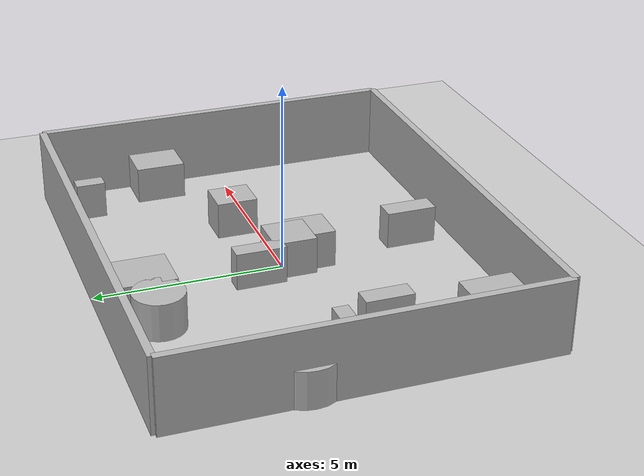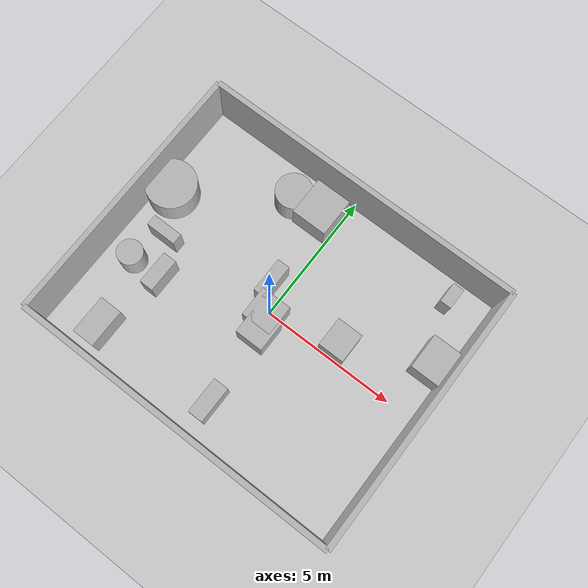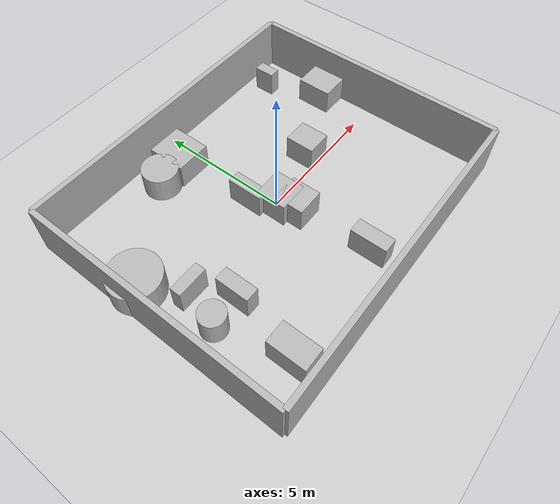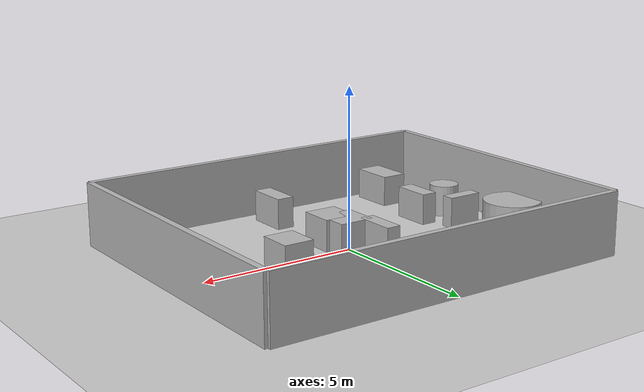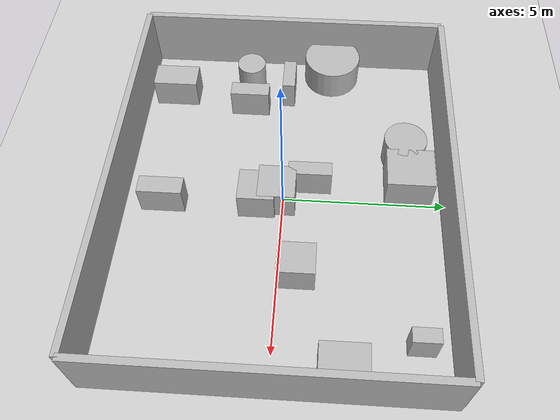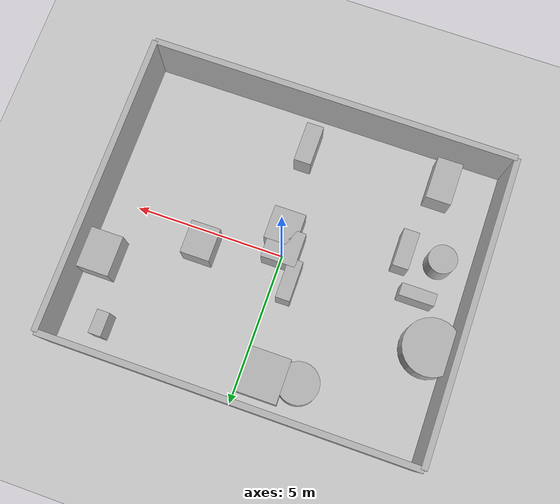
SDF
<?xml version="1.0"?>
<sdf version="1.6">
  <world name="env_11">

    <include><uri>model://ground_plane</uri></include>
    <include><uri>model://sun</uri></include>

    <!-- WALLS -->
    <model name="wall_north"><static>true</static><pose>0 4.967334115428779 1 0 0 0</pose>
      <link name="link"><collision name="collision">
        <geometry><box><size>12.089700045961735 0.2 2</size></box></geometry>
      </collision><visual name="visual">
        <geometry><box><size>12.089700045961735 0.2 2</size></box></geometry>
      </visual></link>
    </model>

    <model name="wall_south"><static>true</static><pose>0 -4.967334115428779 1 0 0 0</pose>
      <link name="link"><collision name="collision">
        <geometry><box><size>12.089700045961735 0.2 2</size></box></geometry>
      </collision><visual name="visual">
        <geometry><box><size>12.089700045961735 0.2 2</size></box></geometry>
      </visual></link>
    </model>

    <model name="wall_east"><static>true</static><pose>6.044850022980867 0 1 0 0 1.57</pose>
      <link name="link"><collision name="collision">
        <geometry><box><size>9.934668230857557 0.2 2</size></box></geometry>
      </collision><visual name="visual">
        <geometry><box><size>9.934668230857557 0.2 2</size></box></geometry>
      </visual></link>
    </model>

    <model name="wall_west"><static>true</static><pose>-6.044850022980867 0 1 0 0 1.57</pose>
      <link name="link"><collision name="collision">
        <geometry><box><size>9.934668230857557 0.2 2</size></box></geometry>
      </collision><visual name="visual">
        <geometry><box><size>9.934668230857557 0.2 2</size></box></geometry>
      </visual></link>
    </model>

    <!-- SENSOR -->

    <model name="lidar_sensor">
      <static>true</static>
      <pose>-2.5942737038364854 0.5538670475214813 0.4 0 0 0</pose>
      <link name="link">
        <sensor name="lidar" type="ray">
          <pose>0 0 0 0 0 0</pose>
          <visualize>true</visualize>
          <always_on>true</always_on>
          <update_rate>10</update_rate>
          <ray>
            <scan><horizontal>
              <samples>120</samples>
              <resolution>1</resolution>
              <min_angle>-3.14159</min_angle>
              <max_angle>3.14159</max_angle>
            </horizontal></scan>
            <range><min>0.15</min><max>20.0</max><resolution>0.01</resolution></range>
          </ray>
          <plugin name="lidar_plugin" filename="liblidar_plugin.so"/>
        </sensor>
      </link>
    </model>

    <!-- OBSTACLES -->

    <model name="obstacle_0">
      <static>true</static>
      <pose>-3.699890411156991 -1.3329029101966139 0.5 0 0 0</pose>
      <link name="link">
        <collision name="collision">
          <geometry><box><size>0.52 1.26 1.0</size></box></geometry>
        </collision>
        <visual name="visual">
          <geometry><box><size>0.52 1.26 1.0</size></box></geometry>
        </visual>
      </link>
    </model>

    <model name="obstacle_1">
      <static>true</static>
      <pose>-4.481965862657178 -0.06330932559537494 0.5 0 0 0</pose>
      <link name="link">
        <collision name="collision">
          <geometry><box><size>1.15 0.41 1.0</size></box></geometry>
        </collision>
        <visual name="visual">
          <geometry><box><size>1.15 0.41 1.0</size></box></geometry>
        </visual>
      </link>
    </model>

    <model name="obstacle_2">
      <static>true</static>
      <pose>-1.8436706503003348 3.7552130946130493 0.5 0 0 0</pose>
      <link name="link">
        <collision name="collision">
          <geometry><cylinder><radius>0.67</radius><length>1.0</length></cylinder></geometry>
        </collision>
        <visual name="visual">
          <geometry><cylinder><radius>0.67</radius><length>1.0</length></cylinder></geometry>
        </visual>
      </link>
    </model>

    <model name="obstacle_3">
      <static>true</static>
      <pose>0.1600917438842817 -0.773453274758118 0.5 0 0 0</pose>
      <link name="link">
        <collision name="collision">
          <geometry><box><size>1.05 1.11 1.0</size></box></geometry>
        </collision>
        <visual name="visual">
          <geometry><box><size>1.05 1.11 1.0</size></box></geometry>
        </visual>
      </link>
    </model>

    <model name="obstacle_4">
      <static>true</static>
      <pose>0.0003618336174051606 -0.17503215364123648 0.5 0 0 0</pose>
      <link name="link">
        <collision name="collision">
          <geometry><box><size>1.14 1.14 1.0</size></box></geometry>
        </collision>
        <visual name="visual">
          <geometry><box><size>1.14 1.14 1.0</size></box></geometry>
        </visual>
      </link>
    </model>

    <model name="obstacle_5">
      <static>true</static>
      <pose>-0.5336526928382952 0.8089651667044526 0.5 0 0 0</pose>
      <link name="link">
        <collision name="collision">
          <geometry><box><size>0.47 1.33 1.0</size></box></geometry>
        </collision>
        <visual name="visual">
          <geometry><box><size>0.47 1.33 1.0</size></box></geometry>
        </visual>
      </link>
    </model>

    <model name="obstacle_6">
      <static>true</static>
      <pose>5.438419185335777 1.92522324427033 0.5 0 0 0</pose>
      <link name="link">
        <collision name="collision">
          <geometry><box><size>1.13 1.34 1.0</size></box></geometry>
        </collision>
        <visual name="visual">
          <geometry><box><size>1.13 1.34 1.0</size></box></geometry>
        </visual>
      </link>
    </model>

    <model name="obstacle_7">
      <static>true</static>
      <pose>0.33530669750464703 -3.653468190573958 0.5 0 0 0</pose>
      <link name="link">
        <collision name="collision">
          <geometry><box><size>0.57 1.35 1.0</size></box></geometry>
        </collision>
        <visual name="visual">
          <geometry><box><size>0.57 1.35 1.0</size></box></geometry>
        </visual>
      </link>
    </model>

    <model name="obstacle_8">
      <static>true</static>
      <pose>-4.888171803979659 -1.3929867327681102 0.5 0 0 0</pose>
      <link name="link">
        <collision name="collision">
          <geometry><cylinder><radius>0.47</radius><length>1.0</length></cylinder></geometry>
        </collision>
        <visual name="visual">
          <geometry><cylinder><radius>0.47</radius><length>1.0</length></cylinder></geometry>
        </visual>
      </link>
    </model>

    <model name="obstacle_9">
      <static>true</static>
      <pose>4.579394304581257 4.03597572089299 0.5 0 0 0</pose>
      <link name="link">
        <collision name="collision">
          <geometry><box><size>0.42 0.78 1.0</size></box></geometry>
        </collision>
        <visual name="visual">
          <geometry><box><size>0.42 0.78 1.0</size></box></geometry>
        </visual>
      </link>
    </model>

    <model name="obstacle_10">
      <static>true</static>
      <pose>-5.361761051559839 1.3713333506416454 0.5 0 0 0</pose>
      <link name="link">
        <collision name="collision">
          <geometry><cylinder><radius>0.93</radius><length>1.0</length></cylinder></geometry>
        </collision>
        <visual name="visual">
          <geometry><cylinder><radius>0.93</radius><length>1.0</length></cylinder></geometry>
        </visual>
      </link>
    </model>

    <model name="obstacle_11">
      <static>true</static>
      <pose>2.5352651663387196 0.5507461798274225 0.5 0 0 0</pose>
      <link name="link">
        <collision name="collision">
          <geometry><box><size>0.97 1.1 1.0</size></box></geometry>
        </collision>
        <visual name="visual">
          <geometry><box><size>0.97 1.1 1.0</size></box></geometry>
        </visual>
      </link>
    </model>

    <model name="obstacle_12">
      <static>true</static>
      <pose>-0.7532928376794921 3.8729811348910506 0.5 0 0 0</pose>
      <link name="link">
        <collision name="collision">
          <geometry><box><size>1.34 1.46 1.0</size></box></geometry>
        </collision>
        <visual name="visual">
          <geometry><box><size>1.34 1.46 1.0</size></box></geometry>
        </visual>
      </link>
    </model>

    <model name="obstacle_13">
      <static>true</static>
      <pose>-4.1927921870762646 -3.8839263481434947 0.5 0 0 0</pose>
      <link name="link">
        <collision name="collision">
          <geometry><box><size>0.84 1.43 1.0</size></box></geometry>
        </collision>
        <visual name="visual">
          <geometry><box><size>0.84 1.43 1.0</size></box></geometry>
        </visual>
      </link>
    </model>

  </world>
</sdf>
